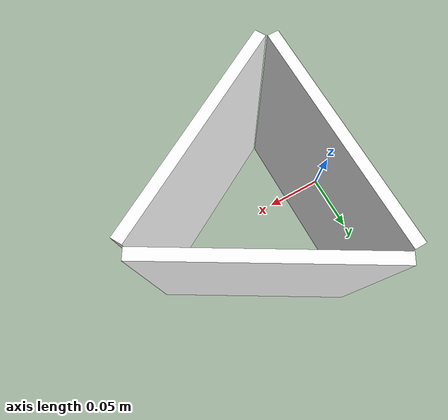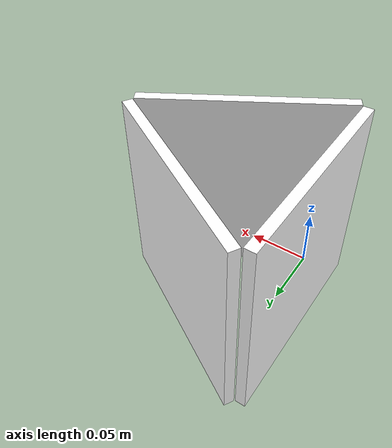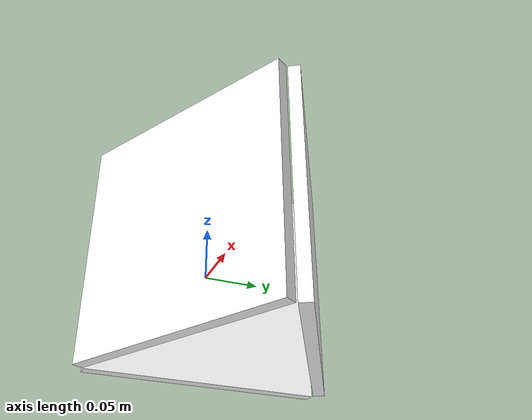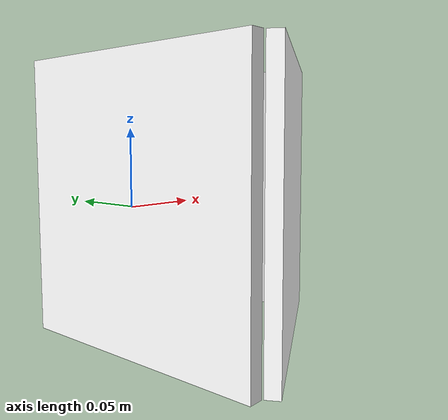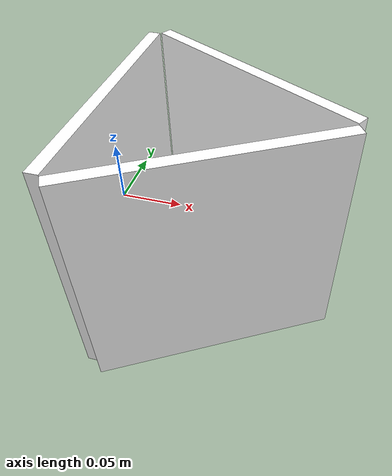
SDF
<?xml version='1.0'?>
<sdf version='1.6'>
  <model name='artag3'>

    <link name='front'>
      <inertial>
        <mass>1</mass>
        <inertia>
          <ixx>0.166667</ixx>
          <ixy>0</ixy>
          <ixz>0</ixz>
          <iyy>0.166667</iyy>
          <iyz>0</iyz>
          <izz>0.166667</izz>
        </inertia>
      </inertial>
      <pose frame=''>0 -2e-06 0 0 -0 0</pose>
      <visual name='visual'>
        <pose>0 0 0 1.5707 0 0</pose>
        <geometry>
          <mesh>
            <uri>model://artag3/meshes/artag3.dae</uri>
            <scale>1 1 1</scale>
          </mesh>
        </geometry>
         <material>
              <script>
                  <uri>model://artag3/materials/scripts</uri>
                  <uri>model://artag3/materials/textures</uri>
                  <name>artag3/Marker</name>
              </script>
       <ambient>1 1 1 1</ambient>
       <diffuse>1 1 1 1</diffuse>
       <specular>0 0 0 1</specular>
       <emissive>1 1 1 0</emissive>
       <shader type='vertex'>
         <normal_map>__default__</normal_map>
       </shader>
     </material>
        <transparency>0</transparency>
        <cast_shadows>1</cast_shadows>
      </visual>
      <collision name='collision'>
        <laser_retro>0</laser_retro>
        <max_contacts>10</max_contacts>
        <pose>0 0 0 1.5707 0 0</pose>
        <geometry>
          <mesh>
            <uri>model://artag3/meshes/artag3.dae</uri>
            <scale>1 1 1</scale>
          </mesh>
        </geometry>
        <surface>
          <friction>
            <ode>
              <mu>1</mu>
              <mu2>1</mu2>
              <fdir1>0 0 0</fdir1>
              <slip1>0</slip1>
              <slip2>0</slip2>
            </ode>
            <torsional>
              <coefficient>1</coefficient>
              <patch_radius>0</patch_radius>
              <surface_radius>0</surface_radius>
              <use_patch_radius>1</use_patch_radius>
              <ode>
                <slip>0</slip>
              </ode>
            </torsional>
          </friction>
          <bounce>
            <restitution_coefficient>0</restitution_coefficient>
            <threshold>1e+06</threshold>
          </bounce>
          <contact>
            <collide_without_contact>0</collide_without_contact>
            <collide_without_contact_bitmask>1</collide_without_contact_bitmask>
            <collide_bitmask>1</collide_bitmask>
            <ode>
              <soft_cfm>0</soft_cfm>
              <soft_erp>0.2</soft_erp>
              <kp>1e+13</kp>
              <kd>1</kd>
              <max_vel>0.01</max_vel>
              <min_depth>0</min_depth>
            </ode>
            <bullet>
              <split_impulse>1</split_impulse>
              <split_impulse_penetration_threshold>-0.01</split_impulse_penetration_threshold>
              <soft_cfm>0</soft_cfm>
              <soft_erp>0.2</soft_erp>
              <kp>1e+13</kp>
              <kd>1</kd>
            </bullet>
          </contact>
        </surface>
      </collision>
    </link>

    <link name='left'>
      <inertial>
        <mass>1</mass>
        <inertia>
          <ixx>0.166667</ixx>
          <ixy>0</ixy>
          <ixz>0</ixz>
          <iyy>0.166667</iyy>
          <iyz>0</iyz>
          <izz>0.166667</izz>
        </inertia>
      </inertial>
      <pose frame=''>0.095 0.055 0 3.1414 0 1.0471</pose>
      <visual name='visual'>
        <pose>0 0 0 1.5707 0 0</pose>
        <geometry>
          <mesh>
            <uri>model://artag3/meshes/artag3.dae</uri>
            <scale>1 1 1</scale>
          </mesh>
        </geometry>
         <material>
              <script>
                  <uri>model://artag3/materials/scripts</uri>
                  <uri>model://artag3/materials/textures</uri>
                  <name>artag3/Marker</name>
              </script>
       <ambient>1 1 1 1</ambient>
       <diffuse>1 1 1 1</diffuse>
       <specular>0 0 0 1</specular>
       <emissive>1 1 1 0</emissive>
       <shader type='vertex'>
         <normal_map>__default__</normal_map>
       </shader>
     </material>
        <transparency>0</transparency>
        <cast_shadows>1</cast_shadows>
      </visual>
      <collision name='collision'>
        <laser_retro>0</laser_retro>
        <max_contacts>10</max_contacts>
        <pose>0 0 0 1.5707 0 0</pose>
        <geometry>
          <mesh>
            <uri>model://artag3/meshes/artag3.dae</uri>
            <scale>1 1 1</scale>
          </mesh>
        </geometry>
        <surface>
          <friction>
            <ode>
              <mu>1</mu>
              <mu2>1</mu2>
              <fdir1>0 0 0</fdir1>
              <slip1>0</slip1>
              <slip2>0</slip2>
            </ode>
            <torsional>
              <coefficient>1</coefficient>
              <patch_radius>0</patch_radius>
              <surface_radius>0</surface_radius>
              <use_patch_radius>1</use_patch_radius>
              <ode>
                <slip>0</slip>
              </ode>
            </torsional>
          </friction>
          <bounce>
            <restitution_coefficient>0</restitution_coefficient>
            <threshold>1e+06</threshold>
          </bounce>
          <contact>
            <collide_without_contact>0</collide_without_contact>
            <collide_without_contact_bitmask>1</collide_without_contact_bitmask>
            <collide_bitmask>1</collide_bitmask>
            <ode>
              <soft_cfm>0</soft_cfm>
              <soft_erp>0.2</soft_erp>
              <kp>1e+13</kp>
              <kd>1</kd>
              <max_vel>0.01</max_vel>
              <min_depth>0</min_depth>
            </ode>
            <bullet>
              <split_impulse>1</split_impulse>
              <split_impulse_penetration_threshold>-0.01</split_impulse_penetration_threshold>
              <soft_cfm>0</soft_cfm>
              <soft_erp>0.2</soft_erp>
              <kp>1e+13</kp>
              <kd>1</kd>
            </bullet>
          </contact>
        </surface>
      </collision>
    </link>

<link name='right'>
      <inertial>
        <mass>1</mass>
        <inertia>
          <ixx>0.166667</ixx>
          <ixy>0</ixy>
          <ixz>0</ixz>
          <iyy>0.166667</iyy>
          <iyz>0</iyz>
          <izz>0.166667</izz>
        </inertia>
      </inertial>
      <pose frame=''>0.095 -0.055 0 3.1414 0 -1.0471</pose>
      <visual name='visual'>
        <pose>0 0 0 1.5707 0 0</pose>
        <geometry>
          <mesh>
            <uri>model://artag3/meshes/artag3.dae</uri>
            <scale>1 1 1</scale>
          </mesh>
        </geometry>
         <material>
              <script>
                  <uri>model://artag3/materials/scripts</uri>
                  <uri>model://artag3/materials/textures</uri>
                  <name>artag3/Marker</name>
              </script>
       <ambient>1 1 1 1</ambient>
       <diffuse>1 1 1 1</diffuse>
       <specular>0 0 0 1</specular>
       <emissive>1 1 1 0</emissive>
       <shader type='vertex'>
         <normal_map>__default__</normal_map>
       </shader>
     </material>
        <transparency>0</transparency>
        <cast_shadows>1</cast_shadows>
      </visual>
      <collision name='collision'>
        <laser_retro>0</laser_retro>
        <max_contacts>10</max_contacts>
        <pose>0 0 0 1.5707 0 0</pose>
        <geometry>
          <mesh>
            <uri>model://artag3/meshes/artag3.dae</uri>
            <scale>1 1 1</scale>
          </mesh>
        </geometry>
        <surface>
          <friction>
            <ode>
              <mu>1</mu>
              <mu2>1</mu2>
              <fdir1>0 0 0</fdir1>
              <slip1>0</slip1>
              <slip2>0</slip2>
            </ode>
            <torsional>
              <coefficient>1</coefficient>
              <patch_radius>0</patch_radius>
              <surface_radius>0</surface_radius>
              <use_patch_radius>1</use_patch_radius>
              <ode>
                <slip>0</slip>
              </ode>
            </torsional>
          </friction>
          <bounce>
            <restitution_coefficient>0</restitution_coefficient>
            <threshold>1e+06</threshold>
          </bounce>
          <contact>
            <collide_without_contact>0</collide_without_contact>
            <collide_without_contact_bitmask>1</collide_without_contact_bitmask>
            <collide_bitmask>1</collide_bitmask>
            <ode>
              <soft_cfm>0</soft_cfm>
              <soft_erp>0.2</soft_erp>
              <kp>1e+13</kp>
              <kd>1</kd>
              <max_vel>0.01</max_vel>
              <min_depth>0</min_depth>
            </ode>
            <bullet>
              <split_impulse>1</split_impulse>
              <split_impulse_penetration_threshold>-0.01</split_impulse_penetration_threshold>
              <soft_cfm>0</soft_cfm>
              <soft_erp>0.2</soft_erp>
              <kp>1e+13</kp>
              <kd>1</kd>
            </bullet>
          </contact>
        </surface>
      </collision>
    </link>

    <static>0</static>
    <allow_auto_disable>1</allow_auto_disable>
  </model>
</sdf>
